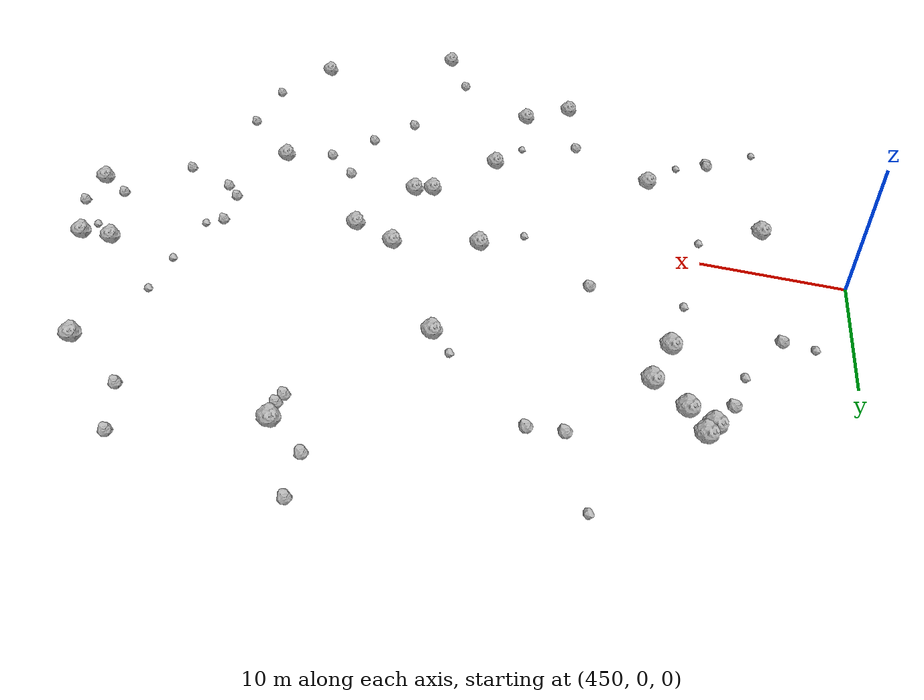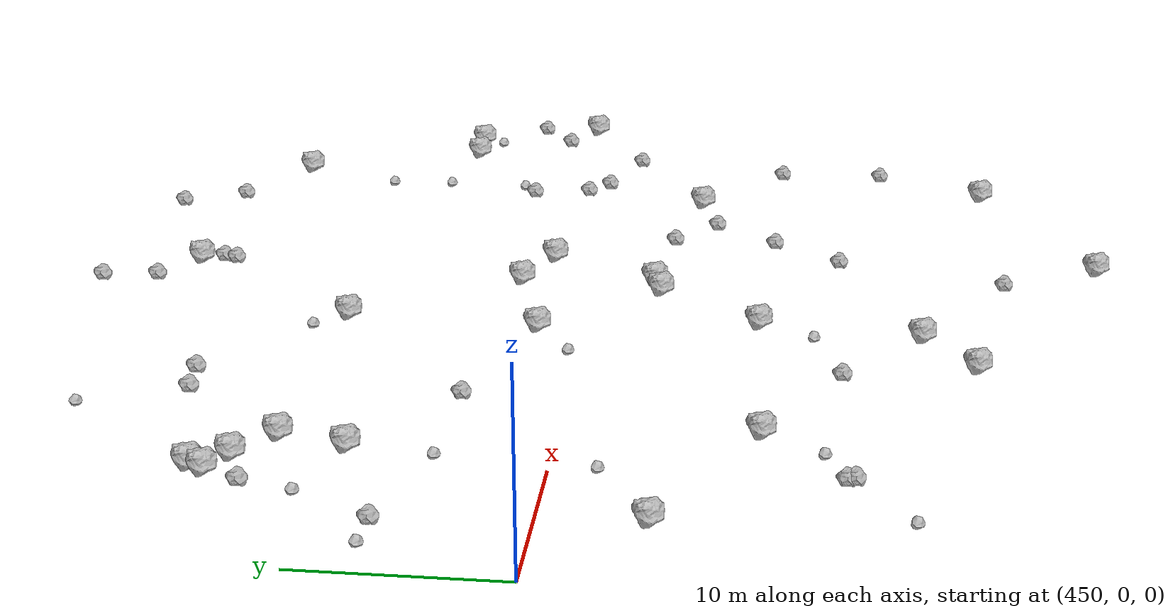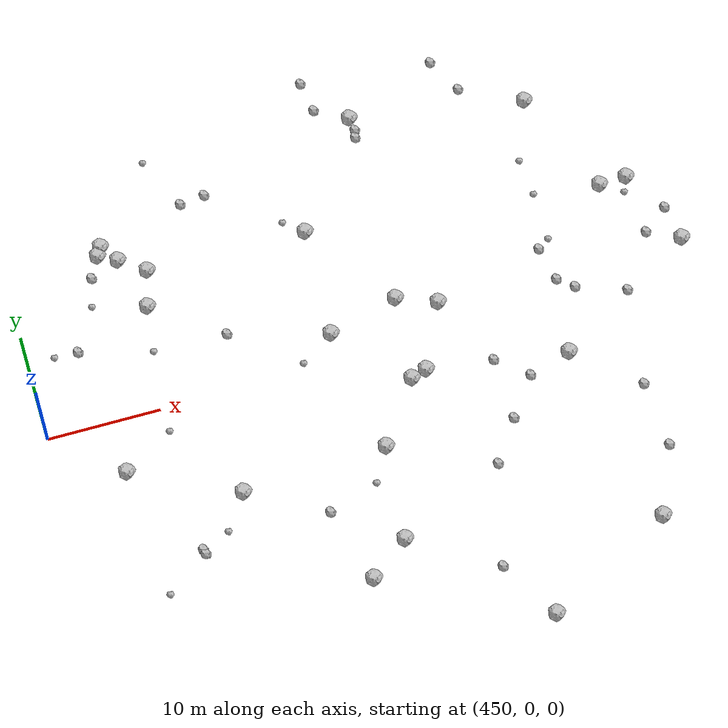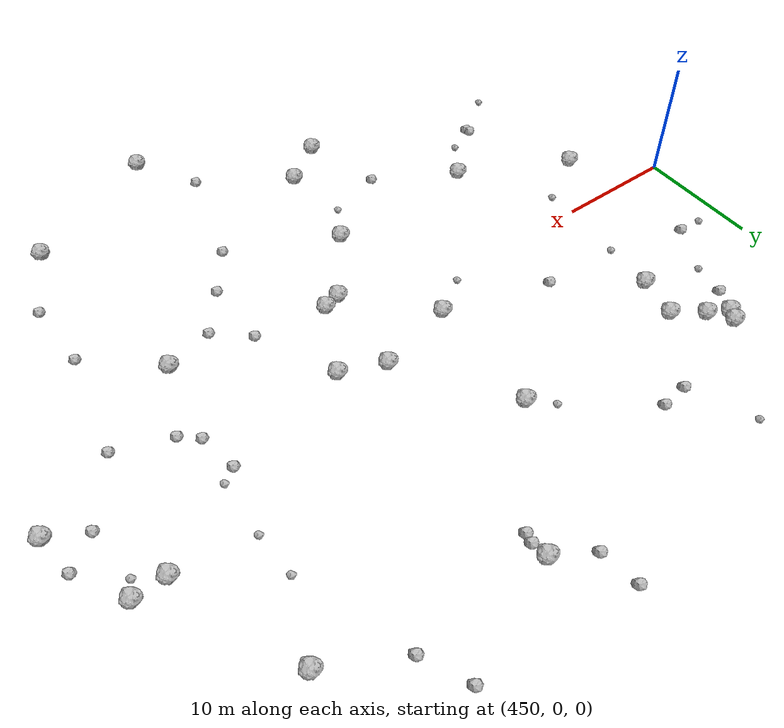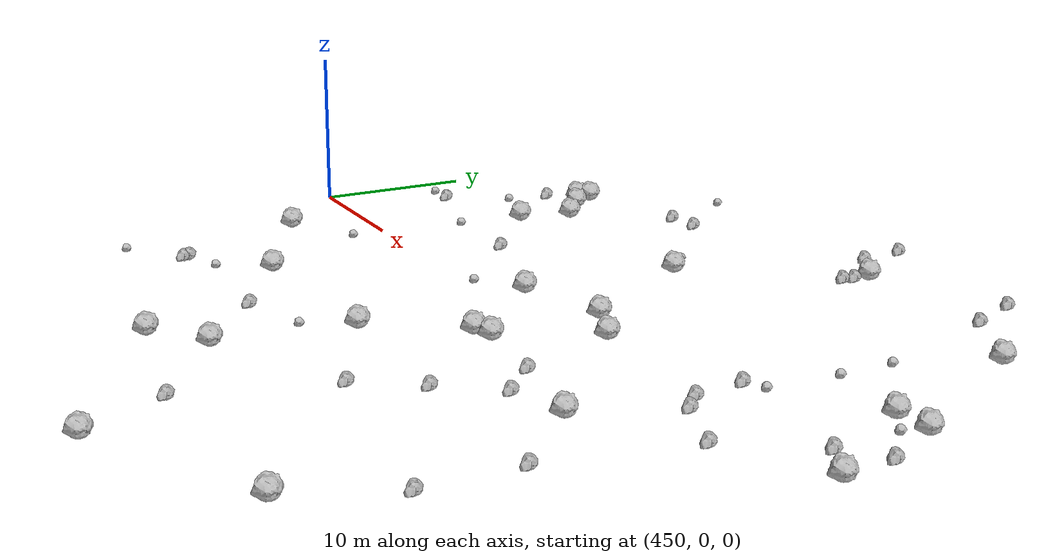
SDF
<sdf version="1.6">
 <world name="default">
  <include><uri>model://sun</uri></include>
  <model name="rock1_12_3">
   <include><uri>model://rock1</uri><pose>481.706872894899 -3.4017656085815986 0.5 0 0 0</pose></include>
  </model>
  <model name="rock1_12_4">
   <include><uri>model://rock1</uri><pose>455.8204859986525 -4.966833572370287 0.5 0 0 0</pose></include>
  </model>
  <model name="rock1_12_5">
   <include><uri>model://rock1</uri><pose>487.0740243717996 -27.359406878863727 0.5 0 0 0</pose></include>
  </model>
  <model name="rock1_12_6">
   <include><uri>model://rock1</uri><pose>476.85192366144213 -17.446201819429632 0.5 0 0 0</pose></include>
  </model>
  <model name="rock1_12_7">
   <include><uri>model://rock1</uri><pose>505.8452064831731 10.147050802389401 0.5 0 0 0</pose></include>
  </model>
  <model name="rock1_12_8">
   <include><uri>model://rock1</uri><pose>458.4300340120198 15.700651823778678 0.5 0 0 0</pose></include>
  </model>
  <model name="rock1_12_9">
   <include><uri>model://rock1</uri><pose>458.8866863079768 16.525729111142226 0.5 0 0 0</pose></include>
  </model>
  <model name="rock1_12_10">
   <include><uri>model://rock1</uri><pose>486.0228186696783 2.953245238450343 0.5 0 0 0</pose></include>
  </model>
  <model name="rock1_12_11">
   <include><uri>model://rock1</uri><pose>462.2863675711739 13.123365221181288 0.5 0 0 0</pose></include>
  </model>
  <model name="rock1_12_12">
   <include><uri>model://rock1</uri><pose>499.48125552186565 20.15915920176267 0.5 0 0 0</pose></include>
  </model>
  <model name="rock1_12_13">
   <include><uri>model://rock1</uri><pose>498.4438402349898 -21.569112825405433 0.5 0 0 0</pose></include>
  </model>
  <model name="rock1_12_14">
   <include><uri>model://rock1</uri><pose>473.32418141021026 -20.102623978070312 0.5 0 0 0</pose></include>
  </model>
  <model name="rock1_12_15">
   <include><uri>model://rock1</uri><pose>464.8671087273018 -9.534307760411451 0.5 0 0 0</pose></include>
  </model>
  <model name="rock1_12_16">
   <include><uri>model://rock1</uri><pose>508.62505834554827 2.94052234992067 0.5 0 0 0</pose></include>
  </model>
  <model name="rock1_12_17">
   <include><uri>model://rock1</uri><pose>483.12210027784533 -2.9512737362483037 0.5 0 0 0</pose></include>
  </model>
  <model name="rock1_12_18">
   <include><uri>model://rock1</uri><pose>460.0440389416339 14.812872127011524 0.5 0 0 0</pose></include>
  </model>
  <model name="rock1_12_19">
   <include><uri>model://rock1</uri><pose>482.5241465734439 4.367510437236042 0.5 0 0 0</pose></include>
  </model>
  <model name="rock1_12_20">
   <include><uri>model://rock1</uri><pose>483.70988157458305 22.861481165166502 0.5 0 0 0</pose></include>
  </model>
  <model name="rock1_12_21">
   <include><uri>model://rock1</uri><pose>461.4329933088205 9.702906082511525 0.5 0 0 0</pose></include>
  </model>
  <model name="rock1_12_22">
   <include><uri>model://rock1</uri><pose>503.321976548104 10.055284035189253 0.5 0 0 0</pose></include>
  </model>
  <model name="rock1_12_23">
   <include><uri>model://rock1</uri><pose>495.5602473803252 -4.838136142654875 0.5 0 0 0</pose></include>
  </model>
  <model name="rock1_12_24">
   <include><uri>model://rock1</uri><pose>476.7157943645253 12.889031401889277 0.5 0 0 0</pose></include>
  </model>
  <model name="rock1_12_25">
   <include><uri>model://rock1</uri><pose>476.14970097428244 2.6708120952466743 0.5 0 0 0</pose></include>
  </model>
  <model name="rock1_12_26">
   <include><uri>model://rock1</uri><pose>477.7306585414542 -8.90827465410278 0.5 0 0 0</pose></include>
  </model>
  <model name="rock2_12_0">
   <include><uri>model://rock2</uri><pose>500.83008118711905 -9.50257370146755 0.3 0 0 0</pose></include>
  </model>
  <model name="rock2_12_1">
   <include><uri>model://rock2</uri><pose>466.7430509911763 18.743066721833074 0.3 0 0 0</pose></include>
  </model>
  <model name="rock2_12_2">
   <include><uri>model://rock2</uri><pose>494.0623254707787 23.060942945664387 0.3 0 0 0</pose></include>
  </model>
  <model name="rock2_12_3">
   <include><uri>model://rock2</uri><pose>496.68677852224164 2.2324900955020723 0.3 0 0 0</pose></include>
  </model>
  <model name="rock2_12_4">
   <include><uri>model://rock2</uri><pose>480.8133982418192 24.622811304410483 0.3 0 0 0</pose></include>
  </model>
  <model name="rock2_12_5">
   <include><uri>model://rock2</uri><pose>483.8424983972456 21.62549165192754 0.3 0 0 0</pose></include>
  </model>
  <model name="rock2_12_6">
   <include><uri>model://rock2</uri><pose>508.1586697992802 6.315171399042846 0.3 0 0 0</pose></include>
  </model>
  <model name="rock2_12_7">
   <include><uri>model://rock2</uri><pose>501.0837013279719 -15.513998463293202 0.3 0 0 0</pose></include>
  </model>
  <model name="rock2_12_8">
   <include><uri>model://rock2</uri><pose>471.4681300566334 -13.32005482849673 0.3 0 0 0</pose></include>
  </model>
  <model name="rock2_12_9">
   <include><uri>model://rock2</uri><pose>486.4646371778116 -13.071405155406811 0.3 0 0 0</pose></include>
  </model>
  <model name="rock2_12_10">
   <include><uri>model://rock2</uri><pose>498.0315124159658 1.066238077730727 0.3 0 0 0</pose></include>
  </model>
  <model name="rock2_12_11">
   <include><uri>model://rock2</uri><pose>484.0378918959481 -22.080370295461904 0.3 0 0 0</pose></include>
  </model>
  <model name="rock2_12_12">
   <include><uri>model://rock2</uri><pose>457.36805984931 13.810347539405484 0.3 0 0 0</pose></include>
  </model>
  <model name="rock2_12_13">
   <include><uri>model://rock2</uri><pose>454.49712141085195 7.186152940855422 0.3 0 0 0</pose></include>
  </model>
  <model name="rock2_12_14">
   <include><uri>model://rock2</uri><pose>502.37708426275566 -0.5287303885936758 0.3 0 0 0</pose></include>
  </model>
  <model name="rock2_12_15">
   <include><uri>model://rock2</uri><pose>505.77720805087955 4.442139467033975 0.3 0 0 0</pose></include>
  </model>
  <model name="rock2_12_16">
   <include><uri>model://rock2</uri><pose>491.6710700846922 -5.941002048904398 0.3 0 0 0</pose></include>
  </model>
  <model name="rock2_12_17">
   <include><uri>model://rock2</uri><pose>483.66477199557085 20.8799745097078 0.3 0 0 0</pose></include>
  </model>
  <model name="rock2_12_18">
   <include><uri>model://rock2</uri><pose>480.4258485592778 27.63138799232472 0.3 0 0 0</pose></include>
  </model>
  <model name="rock2_12_19">
   <include><uri>model://rock2</uri><pose>460.2378154239691 -13.576748651104573 0.3 0 0 0</pose></include>
  </model>
  <model name="rock2_12_20">
   <include><uri>model://rock2</uri><pose>469.02175134009775 19.030580854203144 0.3 0 0 0</pose></include>
  </model>
  <model name="rock2_12_21">
   <include><uri>model://rock2</uri><pose>496.1040422350256 5.494125568074871 0.3 0 0 0</pose></include>
  </model>
  <model name="rock2_12_22">
   <include><uri>model://rock2</uri><pose>489.02385489676277 -3.655864639743932 0.3 0 0 0</pose></include>
  </model>
  <model name="rock2_12_23">
   <include><uri>model://rock2</uri><pose>489.04189065589145 -9.40188720988834 0.3 0 0 0</pose></include>
  </model>
  <model name="rock2_12_24">
   <include><uri>model://rock2</uri><pose>492.4360122031502 26.47070297718173 0.3 0 0 0</pose></include>
  </model>
  <model name="rock2_12_25">
   <include><uri>model://rock2</uri><pose>460.34159382967863 -13.960489220158838 0.3 0 0 0</pose></include>
  </model>
  <model name="rock2_12_26">
   <include><uri>model://rock2</uri><pose>467.40351987994273 5.245241711448585 0.3 0 0 0</pose></include>
  </model>
  <model name="rock3_12_0">
   <include><uri>model://rock3</uri><pose>497.345605973713 10.857300593145652 0.2 0 0 0</pose></include>
  </model>
  <model name="rock3_12_1">
   <include><uri>model://rock3</uri><pose>456.5425913743346 -16.669409714752156 0.2 0 0 0</pose></include>
  </model>
  <model name="rock3_12_2">
   <include><uri>model://rock3</uri><pose>475.9728602827024 -11.867557248037492 0.2 0 0 0</pose></include>
  </model>
  <model name="rock3_12_3">
   <include><uri>model://rock3</uri><pose>460.83157680674003 5.412491773791771 0.2 0 0 0</pose></include>
  </model>
  <model name="rock3_12_4">
   <include><uri>model://rock3</uri><pose>464.5604126159725 23.74865132010472 0.2 0 0 0</pose></include>
  </model>
  <model name="rock3_12_5">
   <include><uri>model://rock3</uri><pose>473.0608525296735 0.6470978707461086 0.2 0 0 0</pose></include>
  </model>
  <model name="rock3_12_6">
   <include><uri>model://rock3</uri><pose>475.0065858850588 14.409695778602028 0.2 0 0 0</pose></include>
  </model>
  <model name="rock3_12_7">
   <include><uri>model://rock3</uri><pose>460.25494721495716 -2.2726042428194155 0.2 0 0 0</pose></include>
  </model>
  <model name="rock3_12_8">
   <include><uri>model://rock3</uri><pose>452.38822317217347 7.238461091278452 0.2 0 0 0</pose></include>
  </model>
  <model name="rock3_12_9">
   <include><uri>model://rock3</uri><pose>456.71387711146355 11.091595300873422 0.2 0 0 0</pose></include>
  </model>
  <model name="rock3_12_10">
   <include><uri>model://rock3</uri><pose>505.2258651948144 8.799419435009405 0.2 0 0 0</pose></include>
  </model>
  <model name="rock3_12_11">
   <include><uri>model://rock3</uri><pose>497.2097583642991 6.234008329396033 0.2 0 0 0</pose></include>
  </model>
  <model name="rock3_12_12">
   <include><uri>model://rock3</uri><pose>497.1613527301763 14.430537277115015 0.2 0 0 0</pose></include>
  </model>
  <model name="rock3_12_13">
   <include><uri>model://rock3</uri><pose>462.68911298158565 -12.592850896502863 0.2 0 0 0</pose></include>
  </model>
 </world>
</sdf>
